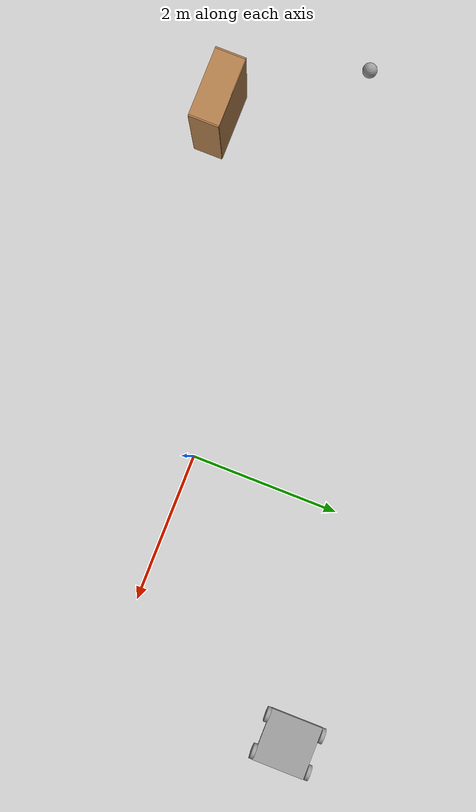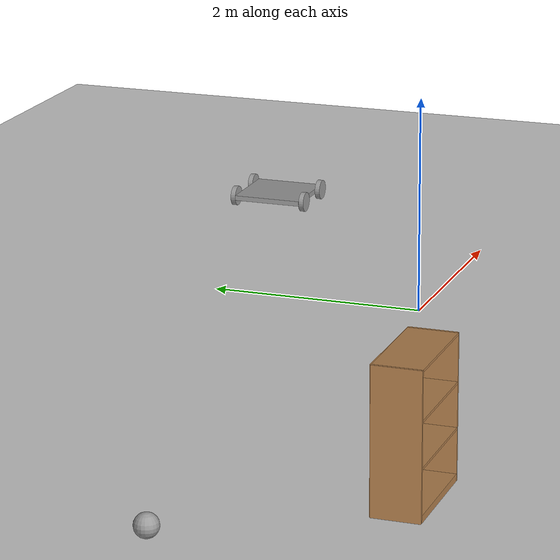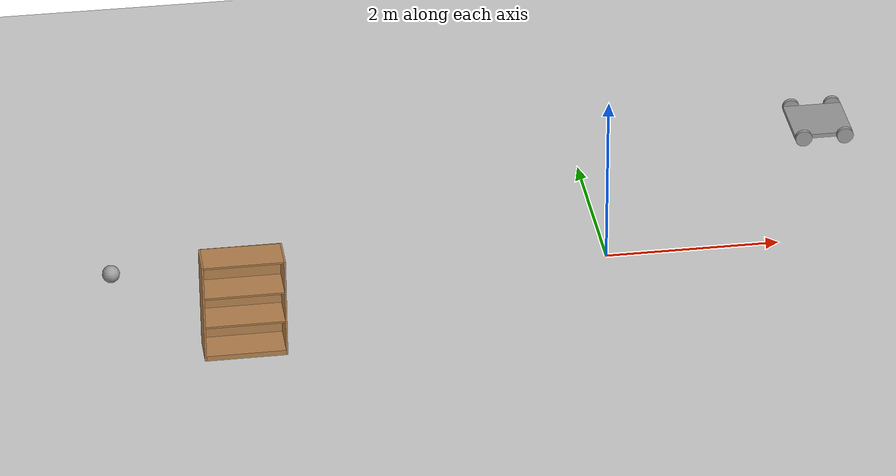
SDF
<sdf version="1.6">
 <world name="default">
  <model name="ground_plane">
   <static>1</static>
   <link name="link">
    <collision name="collision">
     <geometry><plane><normal>0 0 1</normal><size>100 100</size></plane></geometry>
     <surface>
      <contact><collide_bitmask>65535</collide_bitmask></contact>
      <friction><ode><mu>100</mu><mu2>50</mu2></ode></friction>
     </surface>
    </collision>
    <visual name="visual">
     <cast_shadows>0</cast_shadows>
     <geometry><plane><normal>0 0 1</normal><size>100 100</size></plane></geometry>
     <material>
      <script><uri>file://media/materials/scripts/gazebo.material</uri><name>Gazebo/Grey</name></script>
     </material>
    </visual>
   </link>
  </model>
  <model name="Robot">
   <link name="link_2">
    <inertial>
     <mass>1</mass>
     <inertia>
      <ixx>0.166667</ixx>
      <ixy>0</ixy>
      <ixz>0</ixz>
      <iyy>0.166667</iyy>
      <iyz>0</iyz>
      <izz>0.166667</izz>
     </inertia>
    </inertial>
    <pose>0 0.5 0.3 0 -0 0</pose>
    <visual name="visual">
     <geometry><box><size>0.7 0.7 0.05</size></box></geometry>
     <material>
      <lighting>1</lighting>
      <script><uri>file://media/materials/scripts/gazebo.material</uri><name>Gazebo/Grey</name></script>
      <shader type="vertex"><normal_map>__default__</normal_map></shader>
      <ambient>0.3 0.3 0.3 1</ambient>
      <diffuse>0.7 0.7 0.7 1</diffuse>
      <specular>0.01 0.01 0.01 1</specular>
      <emissive>0 0 0 1</emissive>
     </material>
    </visual>
    <collision name="collision">
     <geometry><box><size>0.7 0.7 0.05</size></box></geometry>
     <surface>
      <friction>
       <ode><mu>1</mu><mu2>1</mu2><fdir1>0 0 0</fdir1><slip1>0</slip1><slip2>0</slip2></ode>
       <torsional>
        <coefficient>1</coefficient>
        <patch_radius>0</patch_radius>
        <surface_radius>0</surface_radius>
        <use_patch_radius>1</use_patch_radius>
        <ode><slip>0</slip></ode>
       </torsional>
      </friction>
      <bounce><restitution_coefficient>0</restitution_coefficient><threshold>1e+06</threshold></bounce>
      <contact>
       <collide_without_contact>0</collide_without_contact>
       <collide_without_contact_bitmask>1</collide_without_contact_bitmask>
       <collide_bitmask>1</collide_bitmask>
       <ode>
        <soft_cfm>0</soft_cfm>
        <soft_erp>0.2</soft_erp>
        <kp>1e+13</kp>
        <kd>1</kd>
        <max_vel>0.01</max_vel>
        <min_depth>0</min_depth>
       </ode>
       <bullet>
        <split_impulse>1</split_impulse>
        <split_impulse_penetration_threshold>-0.01</split_impulse_penetration_threshold>
        <soft_cfm>0</soft_cfm>
        <soft_erp>0.2</soft_erp>
        <kp>1e+13</kp>
        <kd>1</kd>
       </bullet>
      </contact>
     </surface>
    </collision>
   </link>
   <link name="link_0">
    <inertial>
     <mass>1</mass>
     <inertia><ixx>0.145833</ixx><ixy>0</ixy><ixz>0</ixz><iyy>0.145833</iyy><iyz>0</iyz><izz>0.125</izz></inertia>
    </inertial>
    <pose>-0.250189 0.875048 0.300006 8e-06 -0 0.000261</pose>
    <visual name="visual">
     <pose>0 0 0 1.571 -0 0</pose>
     <geometry><cylinder><radius>0.1</radius><length>0.05</length></cylinder></geometry>
     <material>
      <lighting>1</lighting>
      <script><uri>file://media/materials/scripts/gazebo.material</uri><name>Gazebo/Grey</name></script>
      <shader type="vertex"><normal_map>__default__</normal_map></shader>
      <ambient>0.3 0.3 0.3 1</ambient>
      <diffuse>0.7 0.7 0.7 1</diffuse>
      <specular>0.01 0.01 0.01 1</specular>
      <emissive>0 0 0 1</emissive>
     </material>
    </visual>
    <collision name="collision">
     <pose>0 0 0 1.571 -0 0</pose>
     <geometry><cylinder><radius>0.1</radius><length>0.05</length></cylinder></geometry>
     <surface>
      <friction>
       <ode><mu>1</mu><mu2>1</mu2><fdir1>0 0 0</fdir1><slip1>0</slip1><slip2>0</slip2></ode>
       <torsional>
        <coefficient>1</coefficient>
        <patch_radius>0</patch_radius>
        <surface_radius>0</surface_radius>
        <use_patch_radius>1</use_patch_radius>
        <ode><slip>0</slip></ode>
       </torsional>
      </friction>
      <bounce><restitution_coefficient>0</restitution_coefficient><threshold>1e+06</threshold></bounce>
      <contact>
       <collide_without_contact>0</collide_without_contact>
       <collide_without_contact_bitmask>1</collide_without_contact_bitmask>
       <collide_bitmask>1</collide_bitmask>
       <ode>
        <soft_cfm>0</soft_cfm>
        <soft_erp>0.2</soft_erp>
        <kp>1e+13</kp>
        <kd>1</kd>
        <max_vel>0.01</max_vel>
        <min_depth>0</min_depth>
       </ode>
       <bullet>
        <split_impulse>1</split_impulse>
        <split_impulse_penetration_threshold>-0.01</split_impulse_penetration_threshold>
        <soft_cfm>0</soft_cfm>
        <soft_erp>0.2</soft_erp>
        <kp>1e+13</kp>
        <kd>1</kd>
       </bullet>
      </contact>
     </surface>
    </collision>
   </link>
   <link name="link_0_clone">
    <inertial>
     <mass>1</mass>
     <inertia><ixx>0.145833</ixx><ixy>0</ixy><ixz>0</ixz><iyy>0.145833</iyy><iyz>0</iyz><izz>0.125</izz></inertia>
    </inertial>
    <pose>-0.249987 0.124796 0.3 1.6e-05 -0 0.000522</pose>
    <visual name="visual">
     <pose>0 0 0 1.571 -0 0</pose>
     <geometry><cylinder><radius>0.1</radius><length>0.05</length></cylinder></geometry>
     <material>
      <lighting>1</lighting>
      <script><uri>file://media/materials/scripts/gazebo.material</uri><name>Gazebo/Grey</name></script>
      <shader type="vertex"><normal_map>__default__</normal_map></shader>
      <ambient>0.3 0.3 0.3 1</ambient>
      <diffuse>0.7 0.7 0.7 1</diffuse>
      <specular>0.01 0.01 0.01 1</specular>
      <emissive>0 0 0 1</emissive>
     </material>
    </visual>
    <collision name="collision">
     <pose>0 0 0 1.571 -0 0</pose>
     <geometry><cylinder><radius>0.1</radius><length>0.05</length></cylinder></geometry>
     <surface>
      <friction>
       <ode><mu>1</mu><mu2>1</mu2><fdir1>0 0 0</fdir1><slip1>0</slip1><slip2>0</slip2></ode>
       <torsional>
        <coefficient>1</coefficient>
        <patch_radius>0</patch_radius>
        <surface_radius>0</surface_radius>
        <use_patch_radius>1</use_patch_radius>
        <ode><slip>0</slip></ode>
       </torsional>
      </friction>
      <bounce><restitution_coefficient>0</restitution_coefficient><threshold>1e+06</threshold></bounce>
      <contact>
       <collide_without_contact>0</collide_without_contact>
       <collide_without_contact_bitmask>1</collide_without_contact_bitmask>
       <collide_bitmask>1</collide_bitmask>
       <ode>
        <soft_cfm>0</soft_cfm>
        <soft_erp>0.2</soft_erp>
        <kp>1e+13</kp>
        <kd>1</kd>
        <max_vel>0.01</max_vel>
        <min_depth>0</min_depth>
       </ode>
       <bullet>
        <split_impulse>1</split_impulse>
        <split_impulse_penetration_threshold>-0.01</split_impulse_penetration_threshold>
        <soft_cfm>0</soft_cfm>
        <soft_erp>0.2</soft_erp>
        <kp>1e+13</kp>
        <kd>1</kd>
       </bullet>
      </contact>
     </surface>
    </collision>
   </link>
   <link name="link_0_clone_0">
    <inertial>
     <mass>1</mass>
     <inertia><ixx>0.145833</ixx><ixy>0</ixy><ixz>0</ixz><iyy>0.145833</iyy><iyz>0</iyz><izz>0.125</izz></inertia>
    </inertial>
    <pose>0.249987 0.875204 0.3 1.6e-05 -0 0.000522</pose>
    <visual name="visual">
     <pose>0 0 0 1.571 -0 0</pose>
     <geometry><cylinder><radius>0.1</radius><length>0.05</length></cylinder></geometry>
     <material>
      <lighting>1</lighting>
      <script><uri>file://media/materials/scripts/gazebo.material</uri><name>Gazebo/Grey</name></script>
      <shader type="vertex"><normal_map>__default__</normal_map></shader>
      <ambient>0.3 0.3 0.3 1</ambient>
      <diffuse>0.7 0.7 0.7 1</diffuse>
      <specular>0.01 0.01 0.01 1</specular>
      <emissive>0 0 0 1</emissive>
     </material>
    </visual>
    <collision name="collision">
     <pose>0 0 0 1.571 -0 0</pose>
     <geometry><cylinder><radius>0.1</radius><length>0.05</length></cylinder></geometry>
     <surface>
      <friction>
       <ode><mu>1</mu><mu2>1</mu2><fdir1>0 0 0</fdir1><slip1>0</slip1><slip2>0</slip2></ode>
       <torsional>
        <coefficient>1</coefficient>
        <patch_radius>0</patch_radius>
        <surface_radius>0</surface_radius>
        <use_patch_radius>1</use_patch_radius>
        <ode><slip>0</slip></ode>
       </torsional>
      </friction>
      <bounce><restitution_coefficient>0</restitution_coefficient><threshold>1e+06</threshold></bounce>
      <contact>
       <collide_without_contact>0</collide_without_contact>
       <collide_without_contact_bitmask>1</collide_without_contact_bitmask>
       <collide_bitmask>1</collide_bitmask>
       <ode>
        <soft_cfm>0</soft_cfm>
        <soft_erp>0.2</soft_erp>
        <kp>1e+13</kp>
        <kd>1</kd>
        <max_vel>0.01</max_vel>
        <min_depth>0</min_depth>
       </ode>
       <bullet>
        <split_impulse>1</split_impulse>
        <split_impulse_penetration_threshold>-0.01</split_impulse_penetration_threshold>
        <soft_cfm>0</soft_cfm>
        <soft_erp>0.2</soft_erp>
        <kp>1e+13</kp>
        <kd>1</kd>
       </bullet>
      </contact>
     </surface>
    </collision>
   </link>
   <link name="link_0_clone_0_clone">
    <inertial>
     <mass>1</mass>
     <inertia><ixx>0.145833</ixx><ixy>0</ixy><ixz>0</ixz><iyy>0.145833</iyy><iyz>0</iyz><izz>0.125</izz></inertia>
    </inertial>
    <pose>0.250176 0.124899 0.3 2.4e-05 -0 0.000783</pose>
    <visual name="visual">
     <pose>0 0 0 1.571 -0 0</pose>
     <geometry><cylinder><radius>0.1</radius><length>0.05</length></cylinder></geometry>
     <material>
      <lighting>1</lighting>
      <script><uri>file://media/materials/scripts/gazebo.material</uri><name>Gazebo/Grey</name></script>
      <shader type="vertex"><normal_map>__default__</normal_map></shader>
      <ambient>0.3 0.3 0.3 1</ambient>
      <diffuse>0.7 0.7 0.7 1</diffuse>
      <specular>0.01 0.01 0.01 1</specular>
      <emissive>0 0 0 1</emissive>
     </material>
    </visual>
    <collision name="collision">
     <pose>0 0 0 1.571 -0 0</pose>
     <geometry><cylinder><radius>0.1</radius><length>0.05</length></cylinder></geometry>
     <surface>
      <friction>
       <ode><mu>1</mu><mu2>1</mu2><fdir1>0 0 0</fdir1><slip1>0</slip1><slip2>0</slip2></ode>
       <torsional>
        <coefficient>1</coefficient>
        <patch_radius>0</patch_radius>
        <surface_radius>0</surface_radius>
        <use_patch_radius>1</use_patch_radius>
        <ode><slip>0</slip></ode>
       </torsional>
      </friction>
      <bounce><restitution_coefficient>0</restitution_coefficient><threshold>1e+06</threshold></bounce>
      <contact>
       <collide_without_contact>0</collide_without_contact>
       <collide_without_contact_bitmask>1</collide_without_contact_bitmask>
       <collide_bitmask>1</collide_bitmask>
       <ode>
        <soft_cfm>0</soft_cfm>
        <soft_erp>0.2</soft_erp>
        <kp>1e+13</kp>
        <kd>1</kd>
        <max_vel>0.01</max_vel>
        <min_depth>0</min_depth>
       </ode>
       <bullet>
        <split_impulse>1</split_impulse>
        <split_impulse_penetration_threshold>-0.01</split_impulse_penetration_threshold>
        <soft_cfm>0</soft_cfm>
        <soft_erp>0.2</soft_erp>
        <kp>1e+13</kp>
        <kd>1</kd>
       </bullet>
      </contact>
     </surface>
    </collision>
   </link>
   <joint name="link_2_JOINT_10" type="revolute">
    <parent>link_2</parent>
    <child>link_0_clone</child>
    <axis>
     <xyz>0 0 1</xyz>
     <use_parent_model_frame>0</use_parent_model_frame>
     <limit>
      <lower>-1.79769e+308</lower>
      <upper>1.79769e+308</upper>
      <effort>-1</effort>
      <velocity>-1</velocity>
     </limit>
     <dynamics>
      <spring_reference>0</spring_reference>
      <spring_stiffness>0</spring_stiffness>
      <damping>0</damping>
     </dynamics>
    </axis>
    <physics>
     <ode><limit><cfm>0</cfm><erp>0.2</erp></limit><suspension><cfm>0</cfm><erp>0.2</erp></suspension></ode>
    </physics>
   </joint>
   <joint name="link_2_JOINT_1" type="revolute">
    <parent>link_2</parent>
    <child>link_0</child>
    <axis>
     <xyz>0 0 1</xyz>
     <use_parent_model_frame>0</use_parent_model_frame>
     <limit>
      <lower>-1.79769e+308</lower>
      <upper>1.79769e+308</upper>
      <effort>-1</effort>
      <velocity>-1</velocity>
     </limit>
     <dynamics>
      <spring_reference>0</spring_reference>
      <spring_stiffness>0</spring_stiffness>
      <damping>0</damping>
      <friction>0</friction>
     </dynamics>
    </axis>
    <physics>
     <ode><limit><cfm>0</cfm><erp>0.2</erp></limit><suspension><cfm>0</cfm><erp>0.2</erp></suspension></ode>
    </physics>
   </joint>
   <joint name="link_2_JOINT_8" type="revolute">
    <parent>link_2</parent>
    <child>link_0_clone_0</child>
    <axis>
     <xyz>0 0 1</xyz>
     <use_parent_model_frame>0</use_parent_model_frame>
     <limit>
      <lower>-1.79769e+308</lower>
      <upper>1.79769e+308</upper>
      <effort>-1</effort>
      <velocity>-1</velocity>
     </limit>
     <dynamics>
      <spring_reference>0</spring_reference>
      <spring_stiffness>0</spring_stiffness>
      <damping>0</damping>
     </dynamics>
    </axis>
    <physics>
     <ode><limit><cfm>0</cfm><erp>0.2</erp></limit><suspension><cfm>0</cfm><erp>0.2</erp></suspension></ode>
    </physics>
   </joint>
   <joint name="link_2_JOINT_9" type="revolute">
    <parent>link_2</parent>
    <child>link_0_clone_0_clone</child>
    <axis>
     <xyz>0 0 1</xyz>
     <use_parent_model_frame>0</use_parent_model_frame>
     <limit>
      <lower>-1.79769e+308</lower>
      <upper>1.79769e+308</upper>
      <effort>-1</effort>
      <velocity>-1</velocity>
     </limit>
     <dynamics>
      <spring_reference>0</spring_reference>
      <spring_stiffness>0</spring_stiffness>
      <damping>0</damping>
     </dynamics>
    </axis>
    <physics>
     <ode><limit><cfm>0</cfm><erp>0.2</erp></limit><suspension><cfm>0</cfm><erp>0.2</erp></suspension></ode>
    </physics>
   </joint>
   <static>0</static>
   <pose>2.99086 1.99109 -0.199993 -6e-06 -1.3e-05 0.000689</pose>
  </model>
  <model name="bookshelf">
   <static>1</static>
   <link name="link">
    <inertial><mass>1</mass></inertial>
    <collision name="back">
     <pose>0 0.005 0.6 0 -0 0</pose>
     <geometry><box><size>0.9 0.01 1.2</size></box></geometry>
    </collision>
    <visual name="visual1">
     <pose>0 0.005 0.6 0 -0 0</pose>
     <geometry><box><size>0.9 0.01 1.2</size></box></geometry>
     <material>
      <script><uri>file://media/materials/scripts/gazebo.material</uri><name>Gazebo/Wood</name></script>
     </material>
    </visual>
    <collision name="left_side">
     <pose>0.45 -0.195 0.6 0 -0 0</pose>
     <geometry><box><size>0.02 0.4 1.2</size></box></geometry>
    </collision>
    <visual name="visual2">
     <pose>0.45 -0.195 0.6 0 -0 0</pose>
     <geometry><box><size>0.02 0.4 1.2</size></box></geometry>
     <material>
      <script><uri>file://media/materials/scripts/gazebo.material</uri><name>Gazebo/Wood</name></script>
     </material>
    </visual>
    <collision name="right_side">
     <pose>-0.45 -0.195 0.6 0 -0 0</pose>
     <geometry><box><size>0.02 0.4 1.2</size></box></geometry>
    </collision>
    <visual name="visual3">
     <pose>-0.45 -0.195 0.6 0 -0 0</pose>
     <geometry><box><size>0.02 0.4 1.2</size></box></geometry>
     <material>
      <script><uri>file://media/materials/scripts/gazebo.material</uri><name>Gazebo/Wood</name></script>
     </material>
    </visual>
    <collision name="bottom">
     <pose>0 -0.195 0.03 0 -0 0</pose>
     <geometry><box><size>0.88 0.4 0.06</size></box></geometry>
    </collision>
    <visual name="visual4">
     <pose>0 -0.195 0.03 0 -0 0</pose>
     <geometry><box><size>0.88 0.4 0.06</size></box></geometry>
     <material>
      <script><uri>file://media/materials/scripts/gazebo.material</uri><name>Gazebo/Wood</name></script>
     </material>
    </visual>
    <collision name="top">
     <pose>0 -0.195 1.19 0 -0 0</pose>
     <geometry><box><size>0.88 0.4 0.02</size></box></geometry>
    </collision>
    <visual name="visual5">
     <pose>0 -0.195 1.19 0 -0 0</pose>
     <geometry><box><size>0.88 0.4 0.02</size></box></geometry>
     <material>
      <script><uri>file://media/materials/scripts/gazebo.material</uri><name>Gazebo/Wood</name></script>
     </material>
    </visual>
    <collision name="low_shelf">
     <pose>0 -0.195 0.43 0 -0 0</pose>
     <geometry><box><size>0.88 0.4 0.02</size></box></geometry>
    </collision>
    <visual name="visual6">
     <pose>0 -0.195 0.43 0 -0 0</pose>
     <geometry><box><size>0.88 0.4 0.02</size></box></geometry>
     <material>
      <script><uri>file://media/materials/scripts/gazebo.material</uri><name>Gazebo/Wood</name></script>
     </material>
    </visual>
    <collision name="high_shelf">
     <pose>0 -0.195 0.8 0 -0 0</pose>
     <geometry><box><size>0.88 0.4 0.02</size></box></geometry>
    </collision>
    <visual name="visual7">
     <pose>0 -0.195 0.8 0 -0 0</pose>
     <geometry><box><size>0.88 0.4 0.02</size></box></geometry>
     <material>
      <script><uri>file://media/materials/scripts/gazebo.material</uri><name>Gazebo/Wood</name></script>
     </material>
    </visual>
   </link>
   <pose>-4.28287 -1.11783 0 0 -0 0</pose>
  </model>
  <model name="my_ball">
   <link name="link">
    <inertial>
     <mass>1</mass>
     <inertia><ixx>0.1</ixx><ixy>0</ixy><ixz>0</ixz><iyy>0.1</iyy><iyz>0</iyz><izz>0.1</izz></inertia>
    </inertial>
    <visual name="visual">
     <geometry><sphere><radius>0.1</radius></sphere></geometry>
     <material>
      <script><name>Gazebo/Grey</name><uri>file://media/materials/scripts/gazebo.material</uri></script>
      <shader type="vertex"><normal_map>__default__</normal_map></shader>
      <ambient>1 1 1 1</ambient>
      <diffuse>1 1 1 1</diffuse>
      <specular>1 1 1 1</specular>
      <emissive>1 1 1 1</emissive>
     </material>
    </visual>
    <collision name="collision">
     <geometry><sphere><radius>0.1</radius></sphere></geometry>
     <surface>
      <friction>
       <ode><mu>1</mu><mu2>1</mu2><fdir1>0 0 0</fdir1><slip1>0</slip1><slip2>0</slip2></ode>
       <torsional>
        <coefficient>1</coefficient>
        <patch_radius>0</patch_radius>
        <surface_radius>0</surface_radius>
        <use_patch_radius>1</use_patch_radius>
        <ode><slip>0</slip></ode>
       </torsional>
      </friction>
      <bounce><restitution_coefficient>0</restitution_coefficient><threshold>1e+06</threshold></bounce>
      <contact>
       <collide_without_contact>0</collide_without_contact>
       <collide_without_contact_bitmask>1</collide_without_contact_bitmask>
       <collide_bitmask>1</collide_bitmask>
       <ode>
        <soft_cfm>0</soft_cfm>
        <soft_erp>0.2</soft_erp>
        <kp>1e+13</kp>
        <kd>1</kd>
        <max_vel>0.01</max_vel>
        <min_depth>0</min_depth>
       </ode>
       <bullet>
        <split_impulse>1</split_impulse>
        <split_impulse_penetration_threshold>-0.01</split_impulse_penetration_threshold>
        <soft_cfm>0</soft_cfm>
        <soft_erp>0.2</soft_erp>
        <kp>1e+13</kp>
        <kd>1</kd>
       </bullet>
      </contact>
     </surface>
    </collision>
   </link>
   <static>0</static>
   <pose>-5.62988 0.295388 0.1 0 -0 0</pose>
  </model>
 </world>
</sdf>
